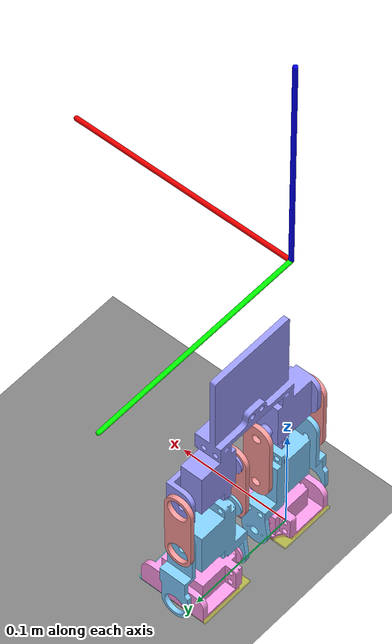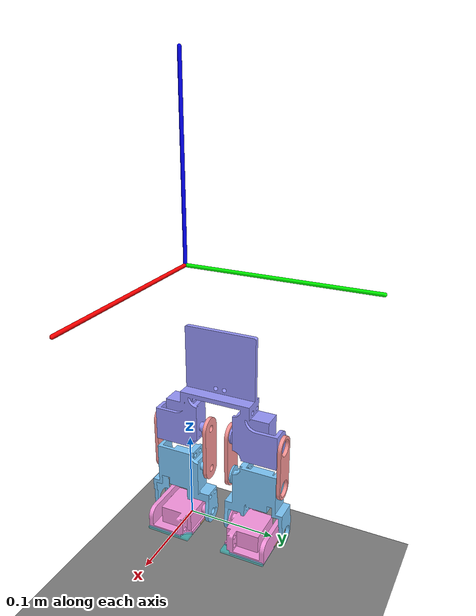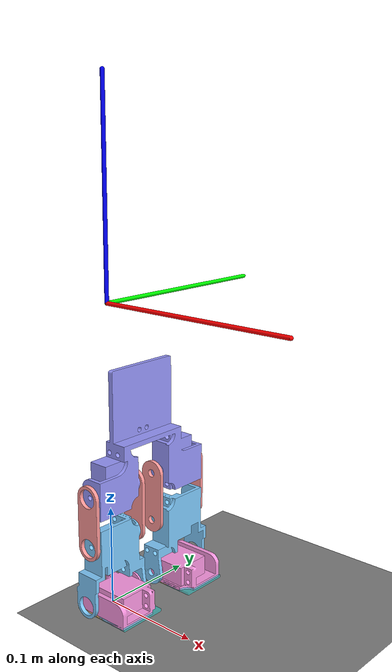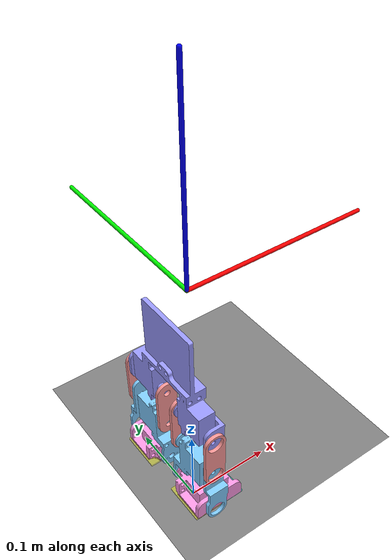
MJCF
<mujoco model="biped">
  <compiler angle="radian"/>
  <option timestep="0.002" integrator="RK4" iterations="50" tolerance="1e-8" gravity="0 0 -9.81"/>
  <size njmax="100" nconmax="100"/>

  <visual>
    <map znear="0.0005" zfar="10"/>
  </visual>

  <asset>
    <!-- Scaled meshes (mm → m) -->
    <mesh name="hips" file="meshes/hips.stl" scale="0.001 0.001 0.001"/>
    <mesh name="left_leg" file="meshes/left_leg.stl" scale="0.001 0.001 0.001"/>
    <mesh name="right_leg" file="meshes/right_leg.stl" scale="0.001 0.001 0.001"/>
    <mesh name="left_connectors" file="meshes/left_connectors.stl" scale="0.001 0.001 0.001"/>
    <mesh name="right_connectors" file="meshes/right_connectors.stl" scale="0.001 0.001 0.001"/>
    <mesh name="left_foot" file="meshes/left_foot.stl" scale="0.001 0.001 0.001"/>
    <mesh name="right_foot" file="meshes/right_foot.stl" scale="0.001 0.001 0.001"/>

    <material name="mat_hips" rgba="0.6 0.6 1.0 1"/>
    <material name="mat_leg" rgba="0.5 0.8 1.0 1"/>
    <material name="mat_connector" rgba="1.0 0.6 0.6 1"/>
    <material name="mat_foot" rgba="1.0 0.6 0.9 1"/>
    <texture name="tex_checker" type="2d" builtin="checker"
         width="512" height="512"
         rgb1="0.2 0.2 0.2" rgb2="0.8 0.8 0.8"
         mark="none" markrgb="0 0 0"/>
    <material name="mat_checker" texture="tex_checker" texrepeat="20 20"
        reflectance="0.2" shininess="0.1"/>
  </asset>

  <worldbody>
    <!-- Coordinate axes indicator -->
    <body name="axis_indicator" pos="0 0 0.3">
      <!-- X-axis: red -->
      <geom type="capsule" fromto="0 0 0 0.2 0 0"
            size="0.002"
            rgba="1 0 0 1"
            mass="0"
            density="0"
            contype="0" conaffinity="0"/>

      <!-- Y-axis: green -->
      <geom type="capsule" fromto="0 0 0 0 0.2 0"
            size="0.002"
            rgba="0 1 0 1"
            mass="0"
            density="0"
            contype="0" conaffinity="0"/>

      <!-- Z-axis: blue -->
      <geom type="capsule" fromto="0 0 0 0 0 0.2"
            size="0.002"
            rgba="0 0 1 1"
            mass="0"
            density="0"
            contype="0" conaffinity="0"/>

      <camera name="fixed_cam"
          pos="0.8 0.8 0.2"
          mode="targetbody"
          target="axis_indicator"
          fovy="35"/>
    </body>

    <geom name="floor" type="plane"
          pos="0 0 0"
          size="5 5 0.1"
          material="mat_checker"/>

    <light name="main_light"
      pos="0 0 2"
      dir="0 0 -1"
      diffuse="1 1 1"
      specular="0.5 0.5 0.5"
      mode="trackcom"/>

    <body name="biped" pos="0 0 0.167" euler="0 0 1.5708">
      <joint type="free"/>  <!-- allow full movement in the arena -->

      <!-- Hips -->
      <body name="hips" pos="0 0 0">
        <geom type="mesh" mesh="hips" material="mat_hips"/>

        <inertial pos="0.04000000 -0.00551483 -0.00876121" mass="0.15613186" fullinertia="2.23651362e-04 4.32915305e-04 2.20904560e-04 6.96773244e-08 1.20271947e-08 -1.27942874e-05"/>

        <!-- IMU site on hips -->
        <site name="imu_site" pos="0.04 0 0.03" size="0.01" rgba="1 0 0 0"/>

        <camera name="follow_cam"
          pos="1 -0.4 0.05"
          mode="targetbody"
          target="hips"
          fovy="30"/>

          <!-- Left side -->
        <body name="left_connectors">
          <joint name="left_hip_joint" type="hinge"
                 pos="-0.031 -0.005 -0.045"
                 axis="1 0 0"
                 range="-1.57 1.57"
                 damping="0.05" armature="0.0002"/>
          <geom type="mesh" mesh="left_connectors" material="mat_connector"/>

          <inertial pos="0.00195410 -0.00495223 -0.06998861" mass="0.01407262" fullinertia="5.78383861e-06 1.73463681e-05 1.31149358e-05 2.33004292e-08 1.08133438e-08 -2.04518436e-11"/>

          <body name="left_leg">
            <joint name="left_leg_joint" type="hinge"
                   pos="0.025 -0.005 -0.095"
                   axis="1 0 0"
                   range="-1.57 1.57"
                   damping="0.05" armature="0.0002"/>
            <geom type="mesh" mesh="left_leg" material="mat_leg"/>

            <inertial pos="-0.00284265 -0.00694262 -0.10872447" mass="0.16177960" fullinertia="6.19563640e-05 1.04398630e-04 5.81410219e-05 -1.09953090e-06 6.27570276e-06 2.99379135e-06"/>

            <body name="left_foot">
              <joint name="left_foot_joint" type="hinge"
                     pos="0.026 -0.005 -0.153"
                     axis="1 0 0"
                     range="-0.4 0.4"
                     damping="0.05" armature="0.0002"/>

              <geom type="mesh" mesh="left_foot" material="mat_foot"/>

              <inertial pos="-0.00388570 -0.01480068 -0.15577790" mass="0.19996122" fullinertia="5.13141356e-05 5.17039319e-05 8.27300498e-05 -1.27845275e-06 -1.38429671e-06 -1.10072367e-07"/>

              <site name="left_toe"
                type="box"
                pos="-0.005 -0.03 -0.167"
                size="0.025 0.017 0.002"
                rgba="0 1 1 0.4"/>

              <site name="left_heel"
                type="box"
                pos="-0.005 0 -0.167"
                size="0.025 0.017 0.002"
                rgba="1 1 0 0.4"/>
            </body>
          </body>
        </body>

        <!-- Right side -->
        <body name="right_connectors">
          <joint name="right_hip_joint" type="hinge"
                 pos="0.031 -0.005 -0.045"
                 axis="1 0 0"
                 range="-1.57 1.57"
                 damping="0.05" armature="0.0002"/>
          <geom type="mesh" mesh="right_connectors" material="mat_connector"/>

          <inertial pos="0.07804590 -0.00500000 -0.07000000" mass="0.01407262" fullinertia="5.78378540e-06 1.73463592e-05 1.31148922e-05 -3.24218404e-15 -1.40416209e-13 9.78755256e-16"/>

          <body name="right_leg">
            <joint name="right_leg_joint" type="hinge"
                   pos="-0.025 -0.005 -0.095"
                   axis="1 0 0"
                   range="-1.57 1.57"
                   damping="0.05" armature="0.0002"/>
            <geom type="mesh" mesh="right_leg" material="mat_leg"/>

            <inertial pos="0.08284265 -0.00694302 -0.10868068" mass="0.16177960" fullinertia="6.19754334e-05 1.04417699e-04 5.81410232e-05 1.09953123e-06 -6.34599449e-06 3.01646793e-06"/>

            <body name="right_foot">
              <joint name="right_foot_joint" type="hinge"
                     pos="0.054 -0.005 -0.153"
                     axis="1 0 0"
                     range="-0.4 0.4"
                     damping="0.05" armature="0.0002"/>

              <geom type="mesh" mesh="right_foot" material="mat_foot"/>
              <inertial pos="0.08388570 -0.01482039 -0.15572569" mass="0.19996123" fullinertia="5.12372867e-05 5.16250069e-05 8.27321270e-05 1.30894525e-06 1.31859757e-06 -1.26152909e-07"/>

              <site name="right_toe"
                type="box"
                pos="0.085 -0.03 -0.167"
                size="0.025 0.017 0.002"
                rgba="0 1 1 0.4"/>

              <site name="right_heel"
                type="box"
                pos="0.085 0 -0.167"
                size="0.025 0.017 0.002"
                rgba="1 1 0 0.4"/>

            </body>
          </body>
        </body>
      </body>
    </body>
  </worldbody>

  <actuator>
    <!-- Left side -->
    <position name="left_hip_act" joint="left_hip_joint"
              kp="50" forcelimited="true" forcerange="-0.3 0.3"
              ctrlrange="-1.57 1.57"/>
    <position name="left_leg_act" joint="left_leg_joint"
              kp="50" forcelimited="true" forcerange="-0.3 0.3"
              ctrlrange="-1.57 1.57"/>
    <position name="left_foot_act" joint="left_foot_joint"
              kp="50" forcelimited="true" forcerange="-0.3 0.3"
              ctrlrange="-0.4 0.4"/>

    <!-- Right side -->
    <position name="right_hip_act" joint="right_hip_joint"
              kp="50" forcelimited="true" forcerange="-0.3 0.3"
              ctrlrange="-1.57 1.57"/>
    <position name="right_leg_act" joint="right_leg_joint"
              kp="50" forcelimited="true" forcerange="-0.3 0.3"
              ctrlrange="-1.57 1.57"/>
    <position name="right_foot_act" joint="right_foot_joint"
              kp="50" forcelimited="true" forcerange="-0.3 0.3"
              ctrlrange="-0.4 0.4"/>
  </actuator>

  <sensor>
    <!-- IMU on hips -->
    <accelerometer name="imu_acc" site="imu_site"/>
    <gyro          name="imu_gyro" site="imu_site"/>

    <!-- Joint angles/velocities (all six leg joints) -->
    <jointpos name="q_left_hip"   joint="left_hip_joint"/>
    <jointpos name="q_left_knee"  joint="left_leg_joint"/>
    <jointpos name="q_left_ankle" joint="left_foot_joint"/>
    <jointvel name="dq_left_hip"   joint="left_hip_joint"/>
    <jointvel name="dq_left_knee"  joint="left_leg_joint"/>
    <jointvel name="dq_left_ankle" joint="left_foot_joint"/>

    <jointpos name="q_right_hip"   joint="right_hip_joint"/>
    <jointpos name="q_right_knee"  joint="right_leg_joint"/>
    <jointpos name="q_right_ankle" joint="right_foot_joint"/>
    <jointvel name="dq_right_hip"   joint="right_hip_joint"/>
    <jointvel name="dq_right_knee"  joint="right_leg_joint"/>
    <jointvel name="dq_right_ankle" joint="right_foot_joint"/>

    <!-- Foot contact “touch” (normal force at each sole) -->
    <touch name="left_toe_contact"  site="left_toe"/>
    <touch name="left_heel_contact"  site="left_heel"/>
    <touch name="right_toe_contact" site="right_toe"/>
    <touch name="right_heel_contact" site="right_heel"/>
  </sensor>

  <contact>
    <exclude body1="hips" body2="left_connectors"/>
    <exclude body1="hips" body2="right_connectors"/>
  </contact>
</mujoco>
